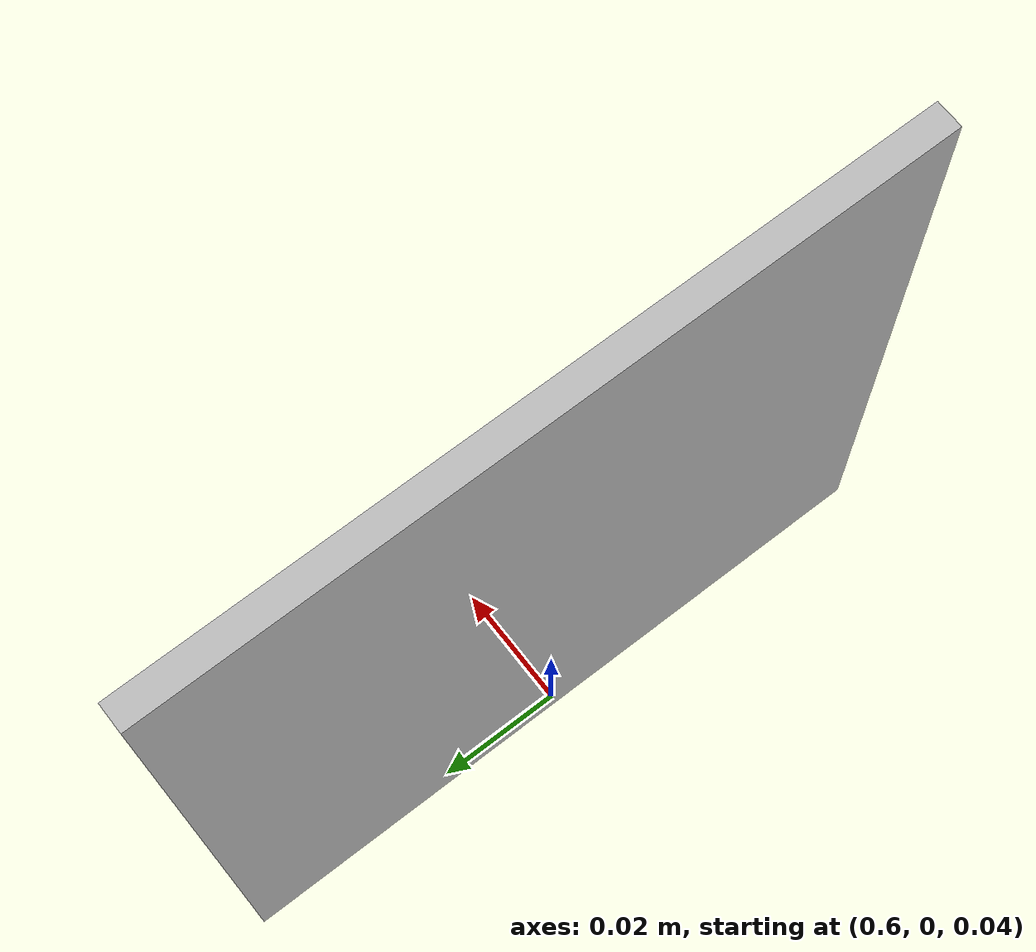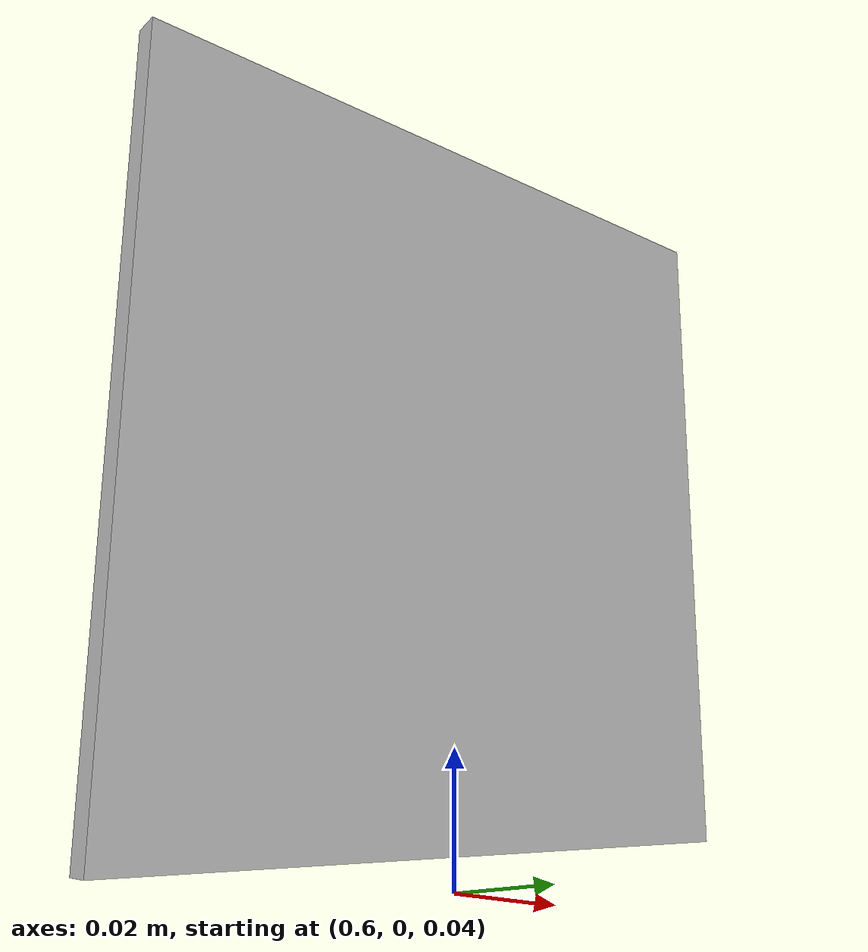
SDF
<?xml version='1.0'?>
<sdf version="1.6">
<model name="marker001">
  <pose>0.6 0 0.1 0 1.575 0</pose>
    <link name="link">
      <visual name="visual">
        <geometry>
          <box>
            <size>0.11 0.11 0.004</size>
          </box>
        </geometry>
        <material>
          <script>
            <uri>model://marker001/materials/marker001.material</uri>
            <name>marker001</name>
          </script>
        </material>
      </visual>
    </link>
  </model>
</sdf>
